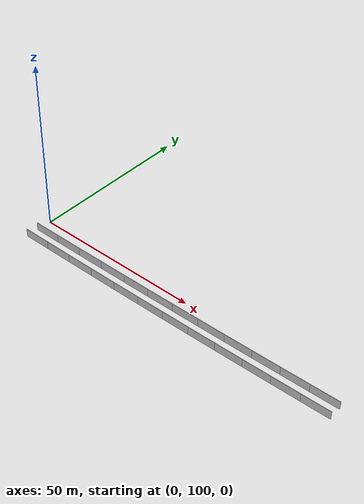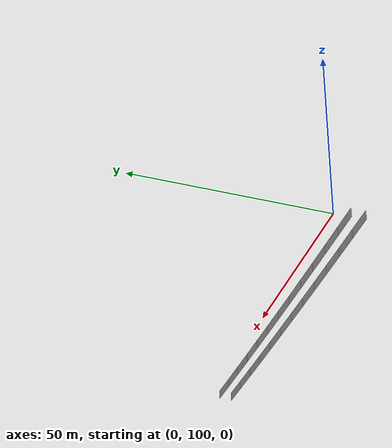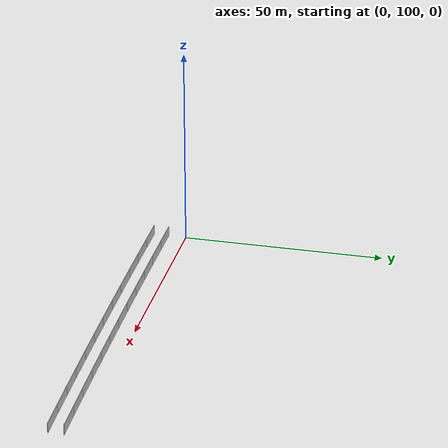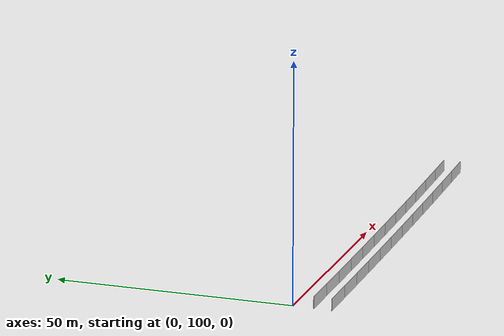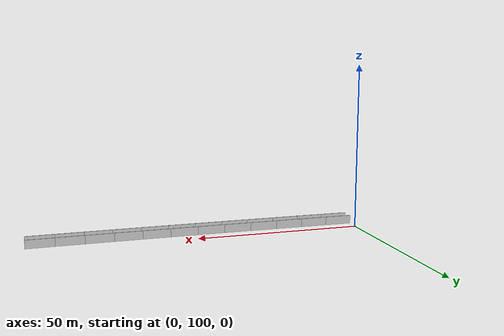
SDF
<?xml version="1.0" ?>
<sdf version="1.6">
  <model name="sps_2200">
    <pose frame="">0 0 0 0 -0 0</pose>
    <static>1</static>
    <self_collide>0</self_collide>
    <allow_auto_disable>0</allow_auto_disable>
    <link name="Wall8966">
      <kinematic>0</kinematic>
      <gravity>1</gravity>
      <self_collide>0</self_collide>
      <collision name="collision">
        <geometry>
          <box>
            <size>8.25177 0.15 2.5</size>
          </box>
        </geometry>
        <pose frame="">0 0 0 0 -0 0</pose>
      </collision>
      <visual name="visual">
        <geometry>
          <box>
            <size>8.25177 0.15 2.5</size>
          </box>
        </geometry>
        <pose frame="">0 0 0 0 -0 0</pose>
        <cast_shadows>1</cast_shadows>
        <transparency>0.0</transparency>
      </visual>
      <pose frame="">3.72015 95.5387 1.25 0 0 -0.00106511</pose>
    </link>
    <link name="Wall8967">
      <kinematic>0</kinematic>
      <gravity>1</gravity>
      <self_collide>0</self_collide>
      <collision name="collision">
        <geometry>
          <box>
            <size>8.25202 0.15 2.5</size>
          </box>
        </geometry>
        <pose frame="">0 0 0 0 -0 0</pose>
      </collision>
      <visual name="visual">
        <geometry>
          <box>
            <size>8.25202 0.15 2.5</size>
          </box>
        </geometry>
        <pose frame="">0 0 0 0 -0 0</pose>
        <cast_shadows>1</cast_shadows>
        <transparency>0.0</transparency>
      </visual>
      <pose frame="">11.972 95.5396 1.25 0 -0 0.00127958</pose>
    </link>
    <link name="Wall8968">
      <kinematic>0</kinematic>
      <gravity>1</gravity>
      <self_collide>0</self_collide>
      <collision name="collision">
        <geometry>
          <box>
            <size>8.25207 0.15 2.5</size>
          </box>
        </geometry>
        <pose frame="">0 0 0 0 -0 0</pose>
      </collision>
      <visual name="visual">
        <geometry>
          <box>
            <size>8.25207 0.15 2.5</size>
          </box>
        </geometry>
        <pose frame="">0 0 0 0 -0 0</pose>
        <cast_shadows>1</cast_shadows>
        <transparency>0.0</transparency>
      </visual>
      <pose frame="">20.2241 95.5601 1.25 0 -0 0.00368339</pose>
    </link>
    <link name="Wall8969">
      <kinematic>0</kinematic>
      <gravity>1</gravity>
      <self_collide>0</self_collide>
      <collision name="collision">
        <geometry>
          <box>
            <size>8.25174 0.15 2.5</size>
          </box>
        </geometry>
        <pose frame="">0 0 0 0 -0 0</pose>
      </collision>
      <visual name="visual">
        <geometry>
          <box>
            <size>8.25174 0.15 2.5</size>
          </box>
        </geometry>
        <pose frame="">0 0 0 0 -0 0</pose>
        <cast_shadows>1</cast_shadows>
        <transparency>0.0</transparency>
      </visual>
      <pose frame="">28.4759 95.6002 1.25 0 -0 0.0060357</pose>
    </link>
    <link name="Wall8970">
      <kinematic>0</kinematic>
      <gravity>1</gravity>
      <self_collide>0</self_collide>
      <collision name="collision">
        <geometry>
          <box>
            <size>8.25188 0.15 2.5</size>
          </box>
        </geometry>
        <pose frame="">0 0 0 0 -0 0</pose>
      </collision>
      <visual name="visual">
        <geometry>
          <box>
            <size>8.25188 0.15 2.5</size>
          </box>
        </geometry>
        <pose frame="">0 0 0 0 -0 0</pose>
        <cast_shadows>1</cast_shadows>
        <transparency>0.0</transparency>
      </visual>
      <pose frame="">36.7274 95.6596 1.25 0 -0 0.00836556</pose>
    </link>
    <link name="Wall8971">
      <kinematic>0</kinematic>
      <gravity>1</gravity>
      <self_collide>0</self_collide>
      <collision name="collision">
        <geometry>
          <box>
            <size>8.2517 0.15 2.5</size>
          </box>
        </geometry>
        <pose frame="">0 0 0 0 -0 0</pose>
      </collision>
      <visual name="visual">
        <geometry>
          <box>
            <size>8.2517 0.15 2.5</size>
          </box>
        </geometry>
        <pose frame="">0 0 0 0 -0 0</pose>
        <cast_shadows>1</cast_shadows>
        <transparency>0.0</transparency>
      </visual>
      <pose frame="">44.9788 95.7384 1.25 0 -0 0.0107328</pose>
    </link>
    <link name="Wall8972">
      <kinematic>0</kinematic>
      <gravity>1</gravity>
      <self_collide>0</self_collide>
      <collision name="collision">
        <geometry>
          <box>
            <size>8.25193 0.15 2.5</size>
          </box>
        </geometry>
        <pose frame="">0 0 0 0 -0 0</pose>
      </collision>
      <visual name="visual">
        <geometry>
          <box>
            <size>8.25193 0.15 2.5</size>
          </box>
        </geometry>
        <pose frame="">0 0 0 0 -0 0</pose>
        <cast_shadows>1</cast_shadows>
        <transparency>0.0</transparency>
      </visual>
      <pose frame="">53.2301 95.8369 1.25 0 -0 0.0131365</pose>
    </link>
    <link name="Wall8973">
      <kinematic>0</kinematic>
      <gravity>1</gravity>
      <self_collide>0</self_collide>
      <collision name="collision">
        <geometry>
          <box>
            <size>8.25178 0.15 2.5</size>
          </box>
        </geometry>
        <pose frame="">0 0 0 0 -0 0</pose>
      </collision>
      <visual name="visual">
        <geometry>
          <box>
            <size>8.25178 0.15 2.5</size>
          </box>
        </geometry>
        <pose frame="">0 0 0 0 -0 0</pose>
        <cast_shadows>1</cast_shadows>
        <transparency>0.0</transparency>
      </visual>
      <pose frame="">61.4811 95.955 1.25 0 -0 0.0154891</pose>
    </link>
    <link name="Wall8974">
      <kinematic>0</kinematic>
      <gravity>1</gravity>
      <self_collide>0</self_collide>
      <collision name="collision">
        <geometry>
          <box>
            <size>8.25168 0.15 2.5</size>
          </box>
        </geometry>
        <pose frame="">0 0 0 0 -0 0</pose>
      </collision>
      <visual name="visual">
        <geometry>
          <box>
            <size>8.25168 0.15 2.5</size>
          </box>
        </geometry>
        <pose frame="">0 0 0 0 -0 0</pose>
        <cast_shadows>1</cast_shadows>
        <transparency>0.0</transparency>
      </visual>
      <pose frame="">69.7317 96.0925 1.25 0 -0 0.0178418</pose>
    </link>
    <link name="Wall8975">
      <kinematic>0</kinematic>
      <gravity>1</gravity>
      <self_collide>0</self_collide>
      <collision name="collision">
        <geometry>
          <box>
            <size>8.25193 0.15 2.5</size>
          </box>
        </geometry>
        <pose frame="">0 0 0 0 -0 0</pose>
      </collision>
      <visual name="visual">
        <geometry>
          <box>
            <size>8.25193 0.15 2.5</size>
          </box>
        </geometry>
        <pose frame="">0 0 0 0 -0 0</pose>
        <cast_shadows>1</cast_shadows>
        <transparency>0.0</transparency>
      </visual>
      <pose frame="">77.982 96.2495 1.25 0 -0 0.0202159</pose>
    </link>
    <link name="Wall8976">
      <kinematic>0</kinematic>
      <gravity>1</gravity>
      <self_collide>0</self_collide>
      <collision name="collision">
        <geometry>
          <box>
            <size>8.25185 0.15 2.5</size>
          </box>
        </geometry>
        <pose frame="">0 0 0 0 -0 0</pose>
      </collision>
      <visual name="visual">
        <geometry>
          <box>
            <size>8.25185 0.15 2.5</size>
          </box>
        </geometry>
        <pose frame="">0 0 0 0 -0 0</pose>
        <cast_shadows>1</cast_shadows>
        <transparency>0.0</transparency>
      </visual>
      <pose frame="">86.232 96.4259 1.25 0 -0 0.0225392</pose>
    </link>
    <link name="Wall8977">
      <kinematic>0</kinematic>
      <gravity>1</gravity>
      <self_collide>0</self_collide>
      <collision name="collision">
        <geometry>
          <box>
            <size>8.25177 0.15 2.5</size>
          </box>
        </geometry>
        <pose frame="">0 0 0 0 -0 0</pose>
      </collision>
      <visual name="visual">
        <geometry>
          <box>
            <size>8.25177 0.15 2.5</size>
          </box>
        </geometry>
        <pose frame="">0 0 0 0 -0 0</pose>
        <cast_shadows>1</cast_shadows>
        <transparency>0.0</transparency>
      </visual>
      <pose frame="">94.4814 96.6218 1.25 0 -0 0.024944</pose>
    </link>
    <link name="Wall9057">
      <kinematic>0</kinematic>
      <gravity>1</gravity>
      <self_collide>0</self_collide>
      <collision name="collision">
        <geometry>
          <box>
            <size>8.2616 0.15 2.5</size>
          </box>
        </geometry>
        <pose frame="">0 0 0 0 -0 0</pose>
      </collision>
      <visual name="visual">
        <geometry>
          <box>
            <size>8.2616 0.15 2.5</size>
          </box>
        </geometry>
        <pose frame="">0 0 0 0 -0 0</pose>
        <cast_shadows>1</cast_shadows>
        <transparency>0.0</transparency>
      </visual>
      <pose frame="">3.63546 91.782 1.25 0 0 -0.0010934</pose>
    </link>
    <link name="Wall9058">
      <kinematic>0</kinematic>
      <gravity>1</gravity>
      <self_collide>0</self_collide>
      <collision name="collision">
        <geometry>
          <box>
            <size>8.26179 0.15 2.5</size>
          </box>
        </geometry>
        <pose frame="">0 0 0 0 -0 0</pose>
      </collision>
      <visual name="visual">
        <geometry>
          <box>
            <size>8.26179 0.15 2.5</size>
          </box>
        </geometry>
        <pose frame="">0 0 0 0 -0 0</pose>
        <cast_shadows>1</cast_shadows>
        <transparency>0.0</transparency>
      </visual>
      <pose frame="">11.8971 91.7828 1.25 0 -0 0.00128545</pose>
    </link>
    <link name="Wall9059">
      <kinematic>0</kinematic>
      <gravity>1</gravity>
      <self_collide>0</self_collide>
      <collision name="collision">
        <geometry>
          <box>
            <size>8.26165 0.15 2.5</size>
          </box>
        </geometry>
        <pose frame="">0 0 0 0 -0 0</pose>
      </collision>
      <visual name="visual">
        <geometry>
          <box>
            <size>8.26165 0.15 2.5</size>
          </box>
        </geometry>
        <pose frame="">0 0 0 0 -0 0</pose>
        <cast_shadows>1</cast_shadows>
        <transparency>0.0</transparency>
      </visual>
      <pose frame="">20.1588 91.8031 1.25 0 -0 0.0036274</pose>
    </link>
    <link name="Wall9060">
      <kinematic>0</kinematic>
      <gravity>1</gravity>
      <self_collide>0</self_collide>
      <collision name="collision">
        <geometry>
          <box>
            <size>8.26199 0.15 2.5</size>
          </box>
        </geometry>
        <pose frame="">0 0 0 0 -0 0</pose>
      </collision>
      <visual name="visual">
        <geometry>
          <box>
            <size>8.26199 0.15 2.5</size>
          </box>
        </geometry>
        <pose frame="">0 0 0 0 -0 0</pose>
        <cast_shadows>1</cast_shadows>
        <transparency>0.0</transparency>
      </visual>
      <pose frame="">28.4206 91.843 1.25 0 -0 0.00602821</pose>
    </link>
    <link name="Wall9061">
      <kinematic>0</kinematic>
      <gravity>1</gravity>
      <self_collide>0</self_collide>
      <collision name="collision">
        <geometry>
          <box>
            <size>8.26164 0.15 2.5</size>
          </box>
        </geometry>
        <pose frame="">0 0 0 0 -0 0</pose>
      </collision>
      <visual name="visual">
        <geometry>
          <box>
            <size>8.26164 0.15 2.5</size>
          </box>
        </geometry>
        <pose frame="">0 0 0 0 -0 0</pose>
        <cast_shadows>1</cast_shadows>
        <transparency>0.0</transparency>
      </visual>
      <pose frame="">36.6822 91.9024 1.25 0 -0 0.00835567</pose>
    </link>
    <link name="Wall9062">
      <kinematic>0</kinematic>
      <gravity>1</gravity>
      <self_collide>0</self_collide>
      <collision name="collision">
        <geometry>
          <box>
            <size>8.26189 0.15 2.5</size>
          </box>
        </geometry>
        <pose frame="">0 0 0 0 -0 0</pose>
      </collision>
      <visual name="visual">
        <geometry>
          <box>
            <size>8.26189 0.15 2.5</size>
          </box>
        </geometry>
        <pose frame="">0 0 0 0 -0 0</pose>
        <cast_shadows>1</cast_shadows>
        <transparency>0.0</transparency>
      </visual>
      <pose frame="">44.9435 91.9812 1.25 0 -0 0.0107195</pose>
    </link>
    <link name="Wall9063">
      <kinematic>0</kinematic>
      <gravity>1</gravity>
      <self_collide>0</self_collide>
      <collision name="collision">
        <geometry>
          <box>
            <size>8.2617 0.15 2.5</size>
          </box>
        </geometry>
        <pose frame="">0 0 0 0 -0 0</pose>
      </collision>
      <visual name="visual">
        <geometry>
          <box>
            <size>8.2617 0.15 2.5</size>
          </box>
        </geometry>
        <pose frame="">0 0 0 0 -0 0</pose>
        <cast_shadows>1</cast_shadows>
        <transparency>0.0</transparency>
      </visual>
      <pose frame="">53.2047 92.0796 1.25 0 -0 0.0130988</pose>
    </link>
    <link name="Wall9064">
      <kinematic>0</kinematic>
      <gravity>1</gravity>
      <self_collide>0</self_collide>
      <collision name="collision">
        <geometry>
          <box>
            <size>8.26179 0.15 2.5</size>
          </box>
        </geometry>
        <pose frame="">0 0 0 0 -0 0</pose>
      </collision>
      <visual name="visual">
        <geometry>
          <box>
            <size>8.26179 0.15 2.5</size>
          </box>
        </geometry>
        <pose frame="">0 0 0 0 -0 0</pose>
        <cast_shadows>1</cast_shadows>
        <transparency>0.0</transparency>
      </visual>
      <pose frame="">61.4656 92.1976 1.25 0 -0 0.0154703</pose>
    </link>
    <link name="Wall9065">
      <kinematic>0</kinematic>
      <gravity>1</gravity>
      <self_collide>0</self_collide>
      <collision name="collision">
        <geometry>
          <box>
            <size>8.26175 0.15 2.5</size>
          </box>
        </geometry>
        <pose frame="">0 0 0 0 -0 0</pose>
      </collision>
      <visual name="visual">
        <geometry>
          <box>
            <size>8.26175 0.15 2.5</size>
          </box>
        </geometry>
        <pose frame="">0 0 0 0 -0 0</pose>
        <cast_shadows>1</cast_shadows>
        <transparency>0.0</transparency>
      </visual>
      <pose frame="">69.7262 92.3351 1.25 0 -0 0.01782</pose>
    </link>
    <link name="Wall9066">
      <kinematic>0</kinematic>
      <gravity>1</gravity>
      <self_collide>0</self_collide>
      <collision name="collision">
        <geometry>
          <box>
            <size>8.26188 0.15 2.5</size>
          </box>
        </geometry>
        <pose frame="">0 0 0 0 -0 0</pose>
      </collision>
      <visual name="visual">
        <geometry>
          <box>
            <size>8.26188 0.15 2.5</size>
          </box>
        </geometry>
        <pose frame="">0 0 0 0 -0 0</pose>
        <cast_shadows>1</cast_shadows>
        <transparency>0.0</transparency>
      </visual>
      <pose frame="">77.9866 92.4921 1.25 0 -0 0.0201916</pose>
    </link>
    <link name="Wall9067">
      <kinematic>0</kinematic>
      <gravity>1</gravity>
      <self_collide>0</self_collide>
      <collision name="collision">
        <geometry>
          <box>
            <size>8.26168 0.15 2.5</size>
          </box>
        </geometry>
        <pose frame="">0 0 0 0 -0 0</pose>
      </collision>
      <visual name="visual">
        <geometry>
          <box>
            <size>8.26168 0.15 2.5</size>
          </box>
        </geometry>
        <pose frame="">0 0 0 0 -0 0</pose>
        <cast_shadows>1</cast_shadows>
        <transparency>0.0</transparency>
      </visual>
      <pose frame="">86.2465 92.6686 1.25 0 -0 0.0225345</pose>
    </link>
    <link name="Wall9068">
      <kinematic>0</kinematic>
      <gravity>1</gravity>
      <self_collide>0</self_collide>
      <collision name="collision">
        <geometry>
          <box>
            <size>8.26197 0.15 2.5</size>
          </box>
        </geometry>
        <pose frame="">0 0 0 0 -0 0</pose>
      </collision>
      <visual name="visual">
        <geometry>
          <box>
            <size>8.26197 0.15 2.5</size>
          </box>
        </geometry>
        <pose frame="">0 0 0 0 -0 0</pose>
        <cast_shadows>1</cast_shadows>
        <transparency>0.0</transparency>
      </visual>
      <pose frame="">94.5059 92.8647 1.25 0 -0 0.0249353</pose>
    </link>
  </model>
</sdf>
